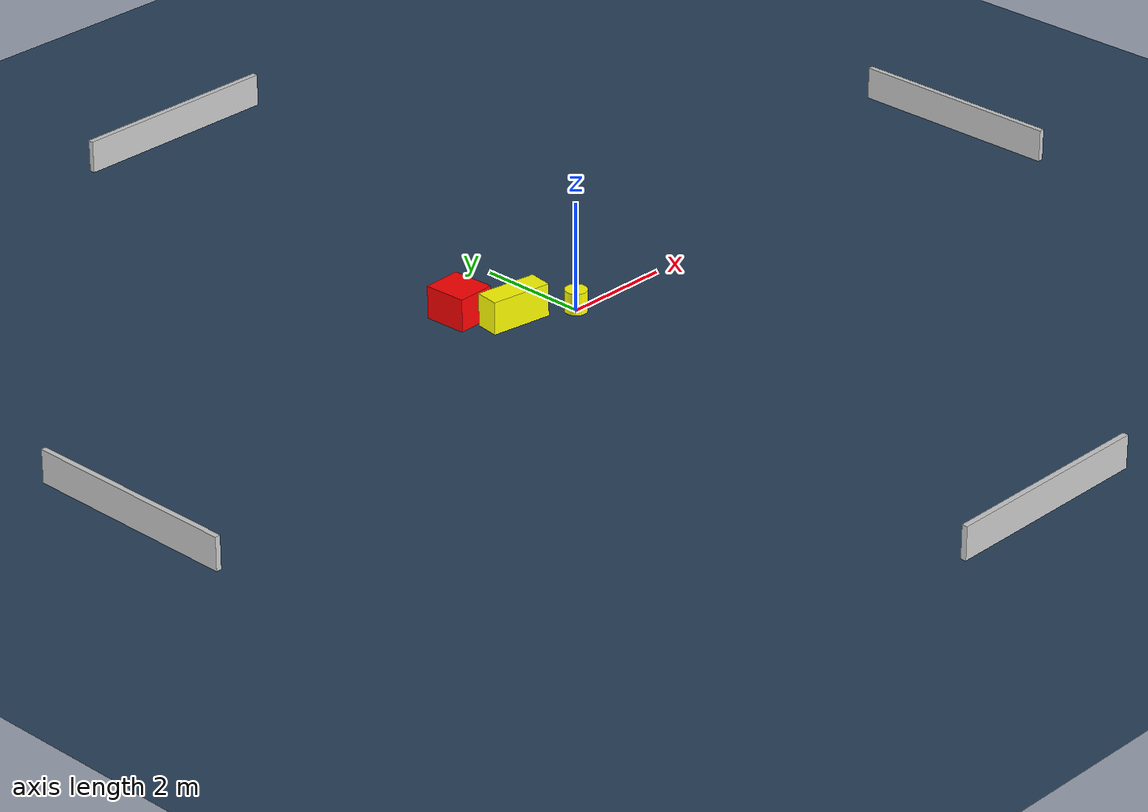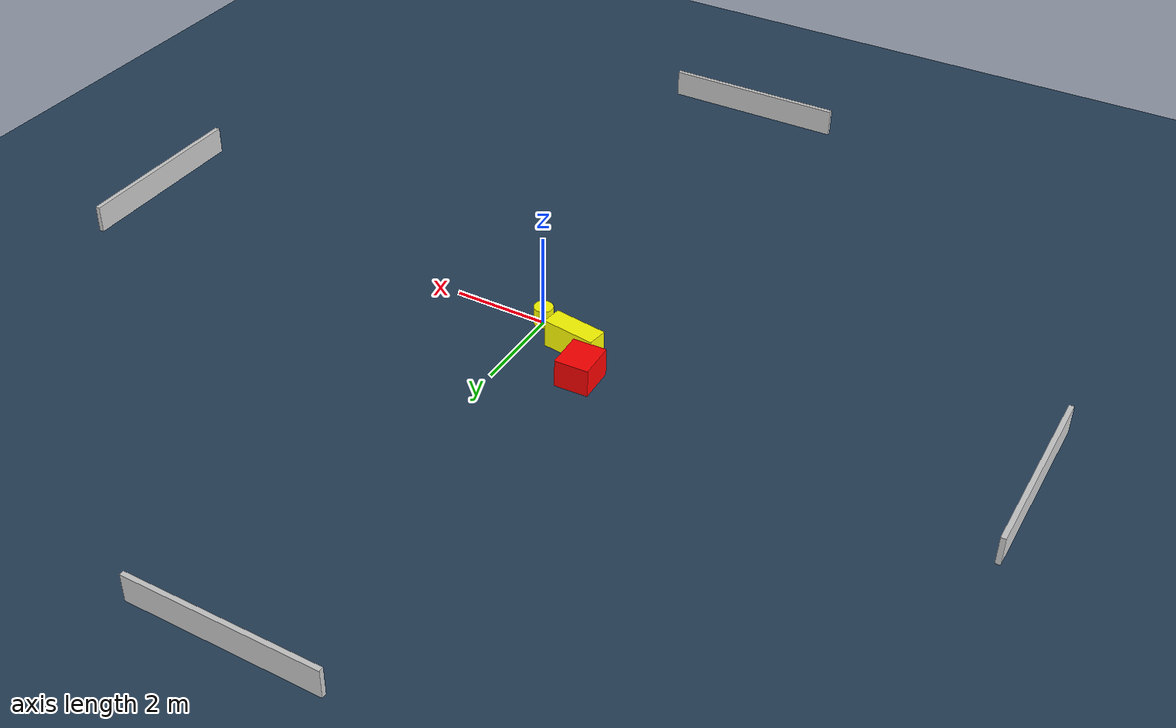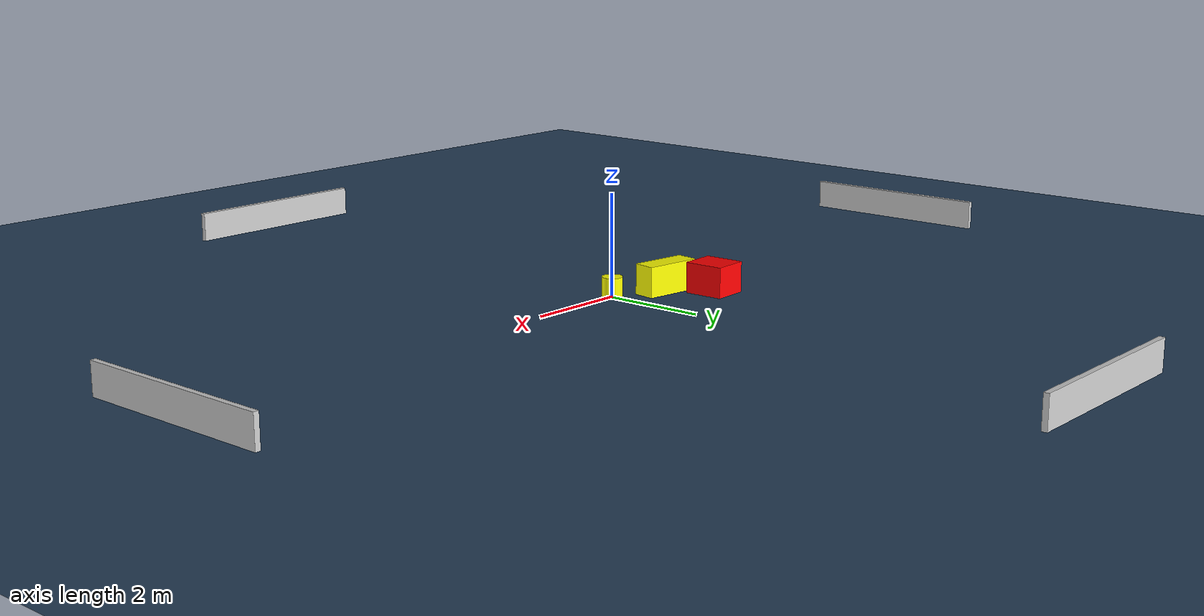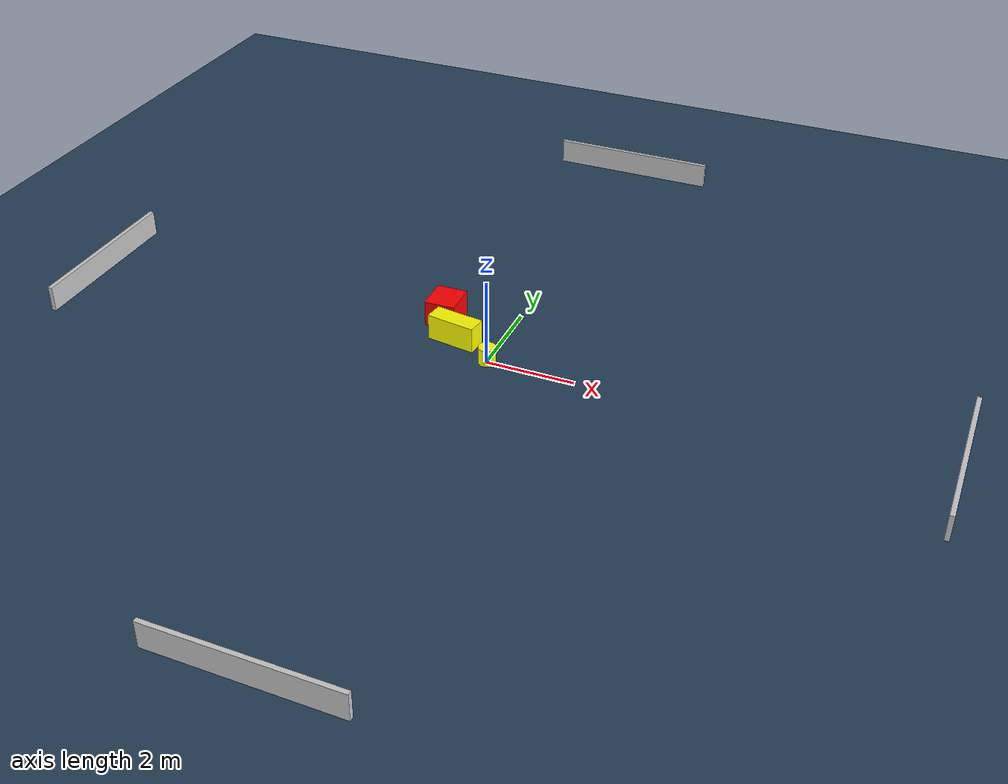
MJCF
<?xml version="1.0" ?>
<mujoco model="generated_environment">
  <option timestep="0.01" integrator="RK4" cone="elliptic"/>
  <default>
    <geom density="1"/>
  </default>
  <asset>
    <texture builtin="gradient" height="3072" name="skybox" rgb1="0.3 0.5 0.7" rgb2="0 0 0" type="skybox" width="512"/>
    <texture builtin="checker" height="300" name="groundplane" rgb1="0.2 0.3 0.4" rgb2="0.1 0.2 0.3" type="2d" width="300"/>
    <material name="groundplane" reflectance="0.2" texrepeat="5 5" texture="groundplane"/>
  </asset>
  <worldbody>
    <light dir="0 0 -1" directional="true" pos="0 0 1.5"/>
    <geom condim="3" friction="0.5 0.005 0.001" material="groundplane" name="floor" pos="0 0 0" size="0 0 0.05" type="plane"/>
    <body name="walls">
      <geom name="wall_1" condim="4" pos="-10.0 0.0 0.3" rgba="0.800000011920929 0.800000011920929 0.800000011920929 1.0" size="0.05 2.0 0.3" type="box"/>
      <geom name="wall_2" condim="4" pos="10.0 0.0 0.3" rgba="0.800000011920929 0.800000011920929 0.800000011920929 1.0" size="0.05 2.0 0.3" type="box"/>
      <geom name="wall_3" condim="4" pos="0.0 -10.0 0.3" rgba="0.800000011920929 0.800000011920929 0.800000011920929 1.0" size="2.0 0.05 0.3" type="box"/>
      <geom name="wall_4" condim="4" pos="0.0 10.0 0.3" rgba="0.800000011920929 0.800000011920929 0.800000011920929 1.0" size="2.0 0.05 0.3" type="box"/>
    </body>
    <body name="robot">
      <joint name="joint_x" type="slide" pos="0 0 0" axis="1 0 0"/>
      <joint name="joint_y" type="slide" pos="0 0 0" axis="0 1 0"/>
      <geom name="robot" type="cylinder" pos="0.0 0.0 0.2" size="0.2 0.2 0.0" mass="5.0" friction="1.0 0.005 0.0001" condim="4" rgba="1.0 1.0 0.0 1.0"/>
    </body>
    <body name="obstacle_1_movable">
      <geom name="obstacle_1_movable" condim="4" pos="-0.9866761879891264 0.5012899763528227 0.3" euler="0 0 261.66988046270853" friction="0.0 0.005 0.001" rgba="1.0 1.0 0.0 1.0" size="0.21858792334371943 0.5701275500197687 0.3" type="box" mass="0.1"/>
      <joint type="free"/>
    </body>
    <body name="obstacle_2_static">
      <geom name="obstacle_2_static" condim="4" pos="-1.545065926776375 1.238105149269992 0.3" euler="0 0 272.03745686741775" friction="0.0 0.005 0.001" rgba="1.0 0.0 0.0 1.0" size="0.3926042171767205 0.354745677468558 0.3" type="box"/>
    </body>
  </worldbody>
  <actuator>
    <motor name="actuator_x" joint="joint_x" gear="1" ctrlrange="-1 1"/>
    <motor name="actuator_y" joint="joint_y" gear="1" ctrlrange="-1 1"/>
  </actuator>
</mujoco>
